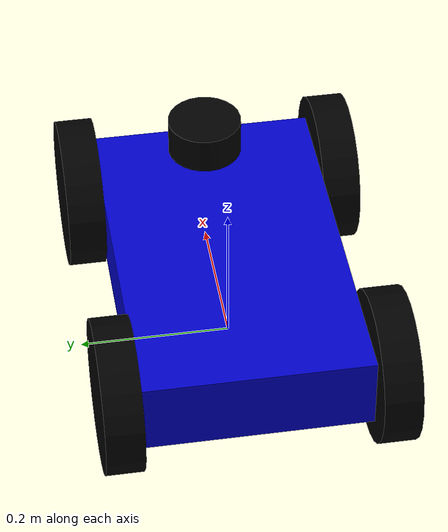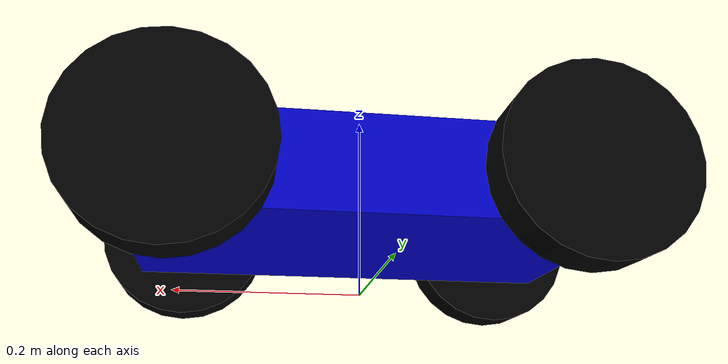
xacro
<?xml version="1.0"?>
<robot name="robot_description" xmlns:xacro="http://www.ros.org/wiki/xacro">

  <!-- Include the sub-components -->
  <xacro:include filename="$(find robot_description)/urdf/mobile_base.xacro"/>
  <xacro:include filename="$(find robot_description)/urdf/sensors.xacro"/>

  <!--
    INSTANTIATE ROBOT
    1. Create the mobile base (chassis + wheels)
    2. Attach the arm to the chassis
    3. Attach sensors to the chassis
  -->

  <!-- Create the base with name prefix 'robot' -->
  <xacro:mobile_base name="robot"/>

  <!-- Attach arm to the chassis link -->

  <!-- Attach sensors to the chassis link -->
  <xacro:add_sensors parent="robot_chassis"/>

  <!--
    GAZEBO PLUGINS
    These are required for the robot to actually move in simulation.
  -->
  <gazebo>
    <!-- Skid Steer Drive Controller (for 4 wheels) -->
    <plugin name="skid_steer_drive_controller" filename="libgazebo_ros_skid_steer_drive.so">
      <updateRate>100.0</updateRate>
      <robotNamespace>/</robotNamespace>
      <leftFrontJoint>front_left_wheel_joint</leftFrontJoint>
      <rightFrontJoint>front_right_wheel_joint</rightFrontJoint>
      <leftRearJoint>rear_left_wheel_joint</leftRearJoint>
      <rightRearJoint>rear_right_wheel_joint</rightRearJoint>
      <wheelSeparation>0.35</wheelSeparation>
      <wheelDiameter>0.2</wheelDiameter>
      <robotBaseFrame>robot_footprint</robotBaseFrame>
      <torque>20</torque>
      <commandTopic>cmd_vel</commandTopic>
      <odometryTopic>odom</odometryTopic>
      <odometryFrame>odom</odometryFrame>
      <broadcastTF>true</broadcastTF>
    </plugin>
  </gazebo>

</robot>

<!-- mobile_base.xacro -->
<robot xmlns:xacro="http://www.ros.org/wiki/xacro">

  <!--
    MACRO: MOBILE BASE
    This macro defines the chassis and the 4 wheels.
    Arguments:
      - name: Prefix for the links/joints to avoid naming conflicts
  -->
  <xacro:macro name="mobile_base" params="name">

    <!--
      BASE FOOTPRINT
      This is a virtual link that sits on the ground (z=0).
      It's useful for navigation algorithms to know where the "floor" is relative to the robot.
    -->
    <link name="${name}_footprint"/>

    <joint name="${name}_footprint_joint" type="fixed">
      <parent link="${name}_footprint"/>
      <child link="${name}_chassis"/>
      <origin xyz="0 0 0.1" rpy="0 0 0"/> <!-- Raise chassis 10cm off ground -->
    </joint>

    <!--
      CHASSIS LINK
      The main body of the robot.
    -->
    <link name="${name}_chassis">
      <visual>
        <geometry>
          <box size="0.5 0.3 0.1"/> <!-- Length 0.5m, Width 0.3m, Height 0.1m -->
        </geometry>
        <material name="blue">
          <color rgba="0 0 0.8 1"/>
        </material>
      </visual>
      <collision>
        <geometry>
          <box size="0.5 0.3 0.1"/>
        </geometry>
      </collision>
      <inertial>
        <mass value="10.0"/> <!-- Heavy base for stability -->
        <inertia ixx="0.1" ixy="0" ixz="0" iyy="0.1" iyz="0" izz="0.1"/>
      </inertial>
    </link>

    <!--
      WHEEL MACRO
      Helper to create 4 identical wheels.
    -->
    <xacro:macro name="wheel" params="prefix x_pos y_pos">
      <link name="${prefix}_wheel">
        <visual>
          <geometry>
            <cylinder radius="0.1" length="0.05"/>
          </geometry>
          <material name="black">
            <color rgba="0 0 0 1"/>
          </material>
        </visual>
        <collision>
          <geometry>
            <cylinder radius="0.1" length="0.05"/>
          </geometry>
        </collision>
        <inertial>
          <mass value="1.0"/>
          <inertia ixx="0.01" ixy="0" ixz="0" iyy="0.01" iyz="0" izz="0.01"/>
        </inertial>
      </link>

      <joint name="${prefix}_wheel_joint" type="continuous">
        <parent link="${name}_chassis"/>
        <child link="${prefix}_wheel"/>
        <!-- Rotate cylinder to be upright for a wheel -->
        <origin xyz="${x_pos} ${y_pos} 0" rpy="-1.5707 0 0"/>
        <axis xyz="0 0 1"/> <!-- Rotate around the cylinder's Z axis (which is robot's Y) -->
      </joint>
    </xacro:macro>

    <!-- Instantiate 4 wheels -->
    <xacro:wheel prefix="front_left"  x_pos="0.2"  y_pos="0.175"/>
    <xacro:wheel prefix="front_right" x_pos="0.2"  y_pos="-0.175"/>
    <xacro:wheel prefix="rear_left"   x_pos="-0.2" y_pos="0.175"/>
    <xacro:wheel prefix="rear_right"  x_pos="-0.2" y_pos="-0.175"/>

  </xacro:macro>
</robot>

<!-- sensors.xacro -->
<robot xmlns:xacro="http://www.ros.org/wiki/xacro">

  <!--
    MACRO: SENSORS
    Adds a Lidar and a Camera to the robot.
    Arguments:
      - parent: The link to attach sensors to.
  -->
  <xacro:macro name="add_sensors" params="parent">

    <!--
      LIDAR SENSOR
      Used for 2D mapping and navigation (AMCL/Gmapping).
    -->
    <link name="lidar_link">
      <visual>
        <geometry>
          <cylinder radius="0.05" length="0.05"/>
        </geometry>
        <material name="black"/>
      </visual>
    </link>

    <joint name="lidar_joint" type="fixed">
      <parent link="${parent}"/>
      <child link="lidar_link"/>
      <origin xyz="0.2 0 0.08" rpy="0 0 0"/> <!-- Mounted on front top of chassis -->
    </joint>

    <!--
      CAMERA SENSOR
      Used for visual perception.
    -->
    <link name="camera_link">
      <visual>
        <geometry>
          <box size="0.02 0.05 0.02"/>
        </geometry>
        <material name="black"/>
      </visual>
    </link>

    <joint name="camera_joint" type="fixed">
      <parent link="${parent}"/>
      <child link="camera_link"/>
      <origin xyz="0.25 0 0.05" rpy="0 0 0"/> <!-- Mounted at the very front -->
    </joint>

    <!--
      GAZEBO PLUGIN: LIDAR
      This plugin makes the lidar sensor actually publish laser scan data in Gazebo.
    -->
    <gazebo reference="lidar_link">
      <sensor type="ray" name="lidar_sensor">
        <pose>0 0 0 0 0 0</pose>
        <visualize>true</visualize>
        <update_rate>10</update_rate>
        <ray>
          <scan>
            <horizontal>
              <samples>360</samples>
              <resolution>1</resolution>
              <min_angle>-3.14159</min_angle>
              <max_angle>3.14159</max_angle>
            </horizontal>
          </scan>
          <range>
            <min>0.1</min>
            <max>10.0</max>
            <resolution>0.01</resolution>
          </range>
          <noise>
            <type>gaussian</type>
            <mean>0.0</mean>
            <stddev>0.01</stddev>
          </noise>
        </ray>
        <plugin name="gazebo_ros_lidar_controller" filename="libgazebo_ros_laser.so">
          <topicName>scan</topicName>
          <frameName>lidar_link</frameName>
        </plugin>
      </sensor>
    </gazebo>

  </xacro:macro>
</robot>
